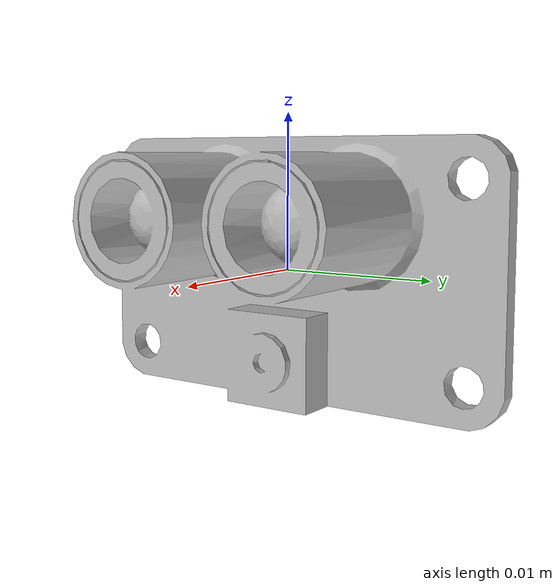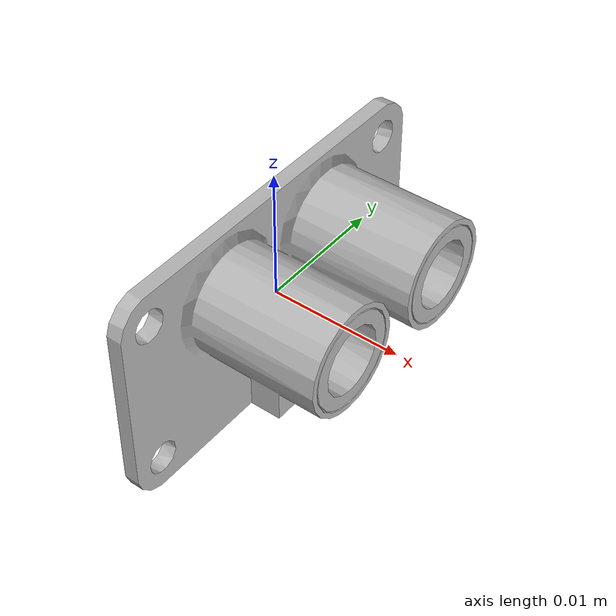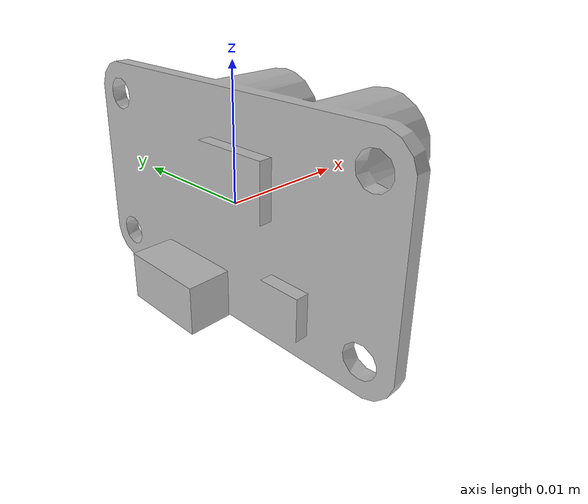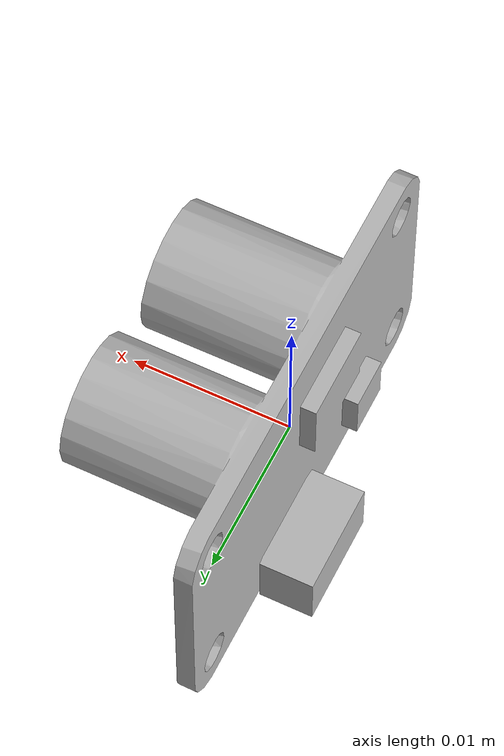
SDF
<?xml version="1.0" encoding="UTF-8"?>
<sdf version="1.9">
  <model name="mtf01">
    <self_collide>false</self_collide>
    <static>false</static>

    <!-- Mechanical frame. The normalized decimated mesh is already in metres;
         its shared physical flow/ToF sensing axis is link-local +X. -->
    <link name="mtf01_link">
      <inertial>
        <mass>0.000001</mass>
        <inertia>
          <ixx>1e-12</ixx>
          <iyy>1e-12</iyy>
          <izz>1e-12</izz>
          <ixy>0</ixy>
          <ixz>0</ixz>
          <iyz>0</iyz>
        </inertia>
      </inertial>
      <visual name="mtf01_visual">
        <geometry>
          <mesh>
            <scale>1 1 1</scale>
            <uri>model://mtf01/meshes/mtf01.obj</uri>
          </mesh>
        </geometry>
      </visual>
    </link>

    <!-- The sensing origin is (+10 mm, 0, +3.5 mm) in the normalized
         mechanical frame. The flow_link/flow_camera names are retained for
         the ROS/PX4 bridge. -->
    <link name="flow_link">
      <pose relative_to="mtf01_link">0.010 0 0.0035 0 0 0</pose>
      <inertial>
        <mass>0.000001</mass>
        <inertia>
          <ixx>0.000000000001</ixx>
          <iyy>0.000000000001</iyy>
          <izz>0.000000000001</izz>
          <ixy>0</ixy>
          <ixz>0</ixz>
          <iyz>0</iyz>
        </inertia>
      </inertial>
      <sensor name="flow_camera" type="camera">
        <!-- Gazebo cameras render along +X, which is now the normalized
             MTF-01 sensing axis without a rotational correction. -->
        <pose>0 0 0 0 0 0</pose>
        <camera>
          <horizontal_fov>0.733038285838</horizontal_fov>
          <image>
            <!-- Internal Gazebo image source for optical-flow calculation;
                 the physical MTF-01 does not expose a raw video stream. -->
            <width>100</width>
            <height>100</height>
          </image>
          <clip>
            <near>0.08</near>
            <far>30</far>
          </clip>
        </camera>
        <always_on>false</always_on>
        <update_rate>100</update_rate>
        <visualize>false</visualize>
      </sensor>
    </link>
    <joint name="mtf01_flow_joint" type="fixed">
      <parent>mtf01_link</parent>
      <child>flow_link</child>
    </joint>

    <!-- The ToF origin and +X sensing direction are shared with optical flow.
         PX4's Gazebo bridge requires the lidar_sensor_link/lidar names. -->
    <link name="lidar_sensor_link">
      <pose relative_to="mtf01_link">0.010 0 0.0035 0 0 0</pose>
      <inertial>
        <mass>0.000001</mass>
        <inertia>
          <ixx>0.000000000001</ixx>
          <iyy>0.000000000001</iyy>
          <izz>0.000000000001</izz>
          <ixy>0</ixy>
          <ixz>0</ixz>
          <iyz>0</iyz>
        </inertia>
      </inertial>
      <sensor name="lidar" type="gpu_lidar">
        <!-- Gazebo's lidar ray axis is +X, matching the normalized model. -->
        <pose>0 0 0 0 0 0</pose>
        <update_rate>100</update_rate>
        <ray>
          <scan>
            <horizontal>
              <samples>1</samples>
              <resolution>1</resolution>
              <min_angle>0</min_angle>
              <max_angle>0</max_angle>
            </horizontal>
            <vertical>
              <samples>1</samples>
              <resolution>1</resolution>
              <min_angle>0</min_angle>
              <max_angle>0</max_angle>
            </vertical>
          </scan>
          <range>
            <min>0.02</min>
            <max>8.0</max>
            <resolution>0.001</resolution>
          </range>
        </ray>
        <always_on>true</always_on>
        <visualize>false</visualize>
      </sensor>
    </link>
    <joint name="mtf01_lidar_joint" type="fixed">
      <parent>mtf01_link</parent>
      <child>lidar_sensor_link</child>
    </joint>
  </model>
</sdf>
